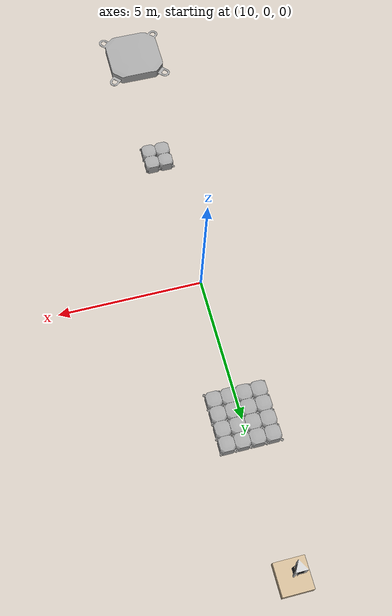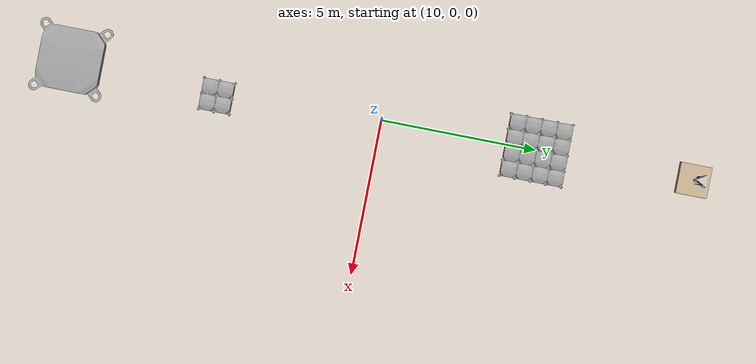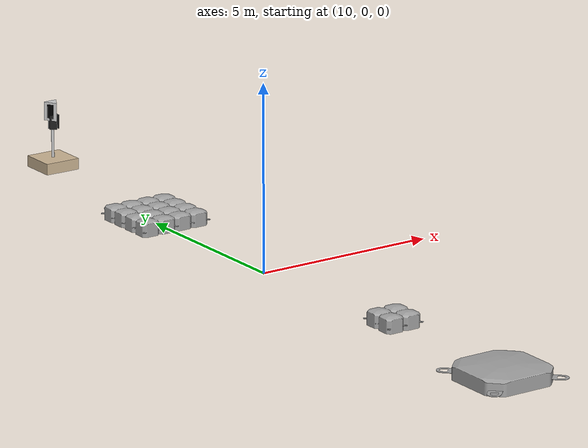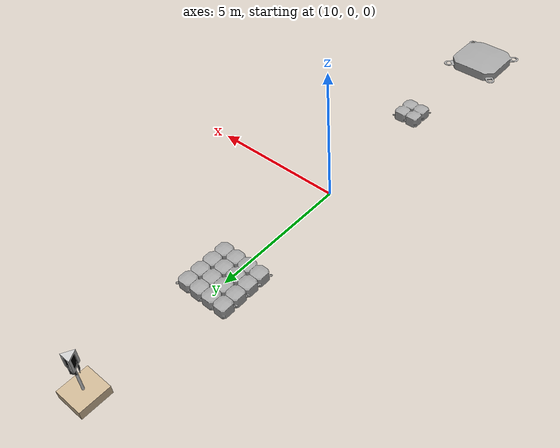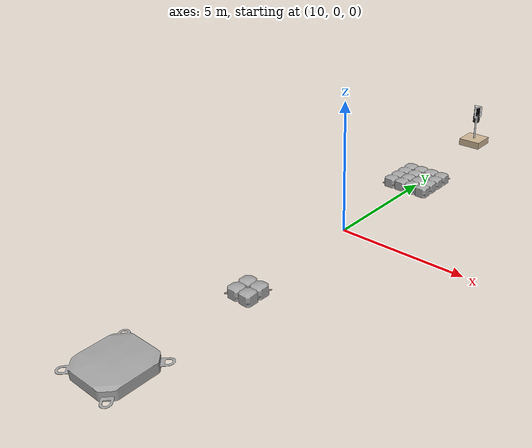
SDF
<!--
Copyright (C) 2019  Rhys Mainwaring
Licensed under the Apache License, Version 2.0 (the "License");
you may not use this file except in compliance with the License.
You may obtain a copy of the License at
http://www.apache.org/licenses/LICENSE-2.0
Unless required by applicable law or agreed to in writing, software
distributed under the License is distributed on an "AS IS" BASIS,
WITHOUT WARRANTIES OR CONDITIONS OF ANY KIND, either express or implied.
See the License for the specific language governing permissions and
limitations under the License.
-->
<sdf version="1.6">
 <world name="ocean_world">
  <scene>
   <sky>
    <time>10</time>
    <sunrise>6</sunrise>
    <sunset>18</sunset>
    <clouds><speed>12</speed><direction>1.57079</direction></clouds>
   </sky>
   <grid>false</grid>
   <origin_visual>false</origin_visual>
  </scene>
  <include><uri>model://sun</uri></include>
  <model name="dock_block">
   <pose>10 -10 0.25 0 0 0</pose>
   <include><uri>model://dock_block</uri></include>
  </model>
  <model name="dock_block_2x2">
   <pose>10 -5 0.25 0 0 0</pose>
   <include><uri>model://dock_block_2x2</uri></include>
  </model>
  <model name="dock_block_4x4">
   <pose>10 5 0.25 0 0 0</pose>
   <include><uri>model://dock_block_4x4</uri></include>
  </model>
  <include><uri>model://robotx_light_buoy</uri><pose>10 10 0.25 0 0 0</pose></include>
 </world>
</sdf>

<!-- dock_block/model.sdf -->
<sdf version="1.5">
  <model name="dock_block">
    <static>true</static>
    <pose>0 0 0.25 0 0 0</pose>
    <link name="link">
      <visual name="visual">
        <geometry>
          <mesh>
            <scale>4 4 1</scale>
            <uri>file://dock_block/mesh/dock_block.dae</uri>
          </mesh>
        </geometry>
      </visual>
    </link>
  </model>
</sdf>

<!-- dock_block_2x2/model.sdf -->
<sdf version="1.5">
  <model name="dock_block_2x2">
    <static>false</static>
    <link name="link">
      <velocity_decay>
        <linear>0.001</linear>
        <angular>0.001</angular>
      </velocity_decay>
      <inertial>
        <pose>0 0 -2 0 0 0</pose>
        <mass>40</mass>
        <inertia>
          <ixx>2.5137</ixx>
          <ixy>0</ixy>
          <ixz>0</ixz>
          <iyy>2.5137</iyy>
          <iyz>0</iyz>
          <izz>0.5386</izz>
        </inertia>
      </inertial>
      <collision name="collision">
        <pose>0 0 0 0 0 0</pose>
        <geometry>
          <box>
            <size>1 1 0.4</size>
          </box>
        </geometry>
      </collision>
      <visual name="visual">
        <pose> 0 0 0.2 0 0 0 </pose>
        <geometry>
          <mesh>
            <uri>file://dock_block_2x2/mesh/dock_block_2x2.dae</uri>
          </mesh>
        </geometry>
      </visual>
    </link>
    <plugin name="BuoyancyPlugin" filename="libbuoyancy_gazebo_plugin.so">
      <wave_model>ocean_waves</wave_model>
      <fluid_density>1000</fluid_density>
      <fluid_level>0</fluid_level>
      <linear_drag>1000.0</linear_drag>
      <angular_drag>200.0</angular_drag>
      <buoyancy name="buoyancy_base">
        <link_name>link</link_name>
      	<pose>0 0 -0.2 0 0 0</pose>
        <geometry>
          <box>
            <size>1 1 .4</size>
          </box>
        </geometry>
      </buoyancy>
    </plugin>
  </model>
</sdf>

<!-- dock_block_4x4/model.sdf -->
<sdf version="1.5">
  <model name="dock_block_4x4">
    <static>false</static>
    <link name="link">
      <velocity_decay>
        <linear>0.001</linear>
        <angular>0.001</angular>
      </velocity_decay>
       <inertial>
        <pose>0 0 0 0 0 0</pose>
        <mass>160</mass>
        <inertia>
          <ixx>55.467</ixx>
          <ixy>0</ixy>
          <ixz>0</ixz>
          <iyy>55.467</iyy>
          <iyz>0</iyz>
          <izz>106.67</izz>
        </inertia>
      </inertial>
      <collision name="collision">
        <pose>0 0 0 0 0 0</pose>
        <geometry>
          <box>
            <size>2 2 0.4</size>
          </box>
        </geometry>
      </collision>
      <visual name="visual">
        <pose>-0.25 0.25 0.2 0 0 0 </pose>
        <geometry>
          <mesh>
            <uri>file://dock_block_4x4/mesh/dock_block_4x4.dae</uri>
          </mesh>
        </geometry>
      </visual>
    </link>
    <plugin name="BuoyancyPlugin" filename="libbuoyancy_gazebo_plugin.so">
      <wave_model>ocean_waves</wave_model>
      <fluid_density>1000</fluid_density>
      <fluid_level>0</fluid_level>
      <linear_drag>1000.0</linear_drag>
      <angular_drag>200.0</angular_drag>
      <buoyancy name="buoyancy_base">
        <link_name>link</link_name>
      	<pose>0 0 0 0 0 0</pose>
        <geometry>
	  <sphere>
            <radius>0.72557</radius>
          </sphere>
	</geometry>
      </buoyancy>
    </plugin>
  </model>
</sdf>

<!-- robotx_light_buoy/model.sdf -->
<sdf version="1.6">
  <model name="robotx_light_buoy">
    <pose>0 0 -0.0762 0 0 0</pose>
    <link name="base_link">
      <velocity_decay>
        <linear>0.001</linear>
        <angular>0.001</angular>
      </velocity_decay>
      <inertial>
        <pose>0 0 -10 0 0 0</pose>
        <!-- 6.35 Kg. (dock block) x 9 (num blocks) + 10 Kg (estimated). -->
        <mass>67.15</mass>
        <inertia>
          <ixx>13.486</ixx>
          <ixy>0</ixy>
          <ixz>0</ixz>
          <iyy>13.486</iyy>
          <iyz>0</iyz>
          <izz>25.1813</izz>
        </inertia>
      </inertial>
      <visual name="base">
        <geometry>
           <mesh>
            <uri>file://robotx_light_buoy/mesh/robotx_light_buoy.dae</uri>
          </mesh>
        </geometry>
      </visual>
      <visual name="panel_1">
        <pose>-0.05 0.09 1.3 0 0 0.5</pose>
        <geometry>
          <box>
            <size>.192 .01 .386</size>
          </box>
        </geometry>
        <material>
          <script>
            <uri>file://media/materials/scripts/gazebo.material</uri>
            <name>Gazebo/Black</name>
          </script>
        </material>
        <plugin name="panel1plugin" filename="libgazebo_ros_color.so">
          <robotNamespace>light_buoy</robotNamespace>
          <topicName>panel1</topicName>
        </plugin>
      </visual>
      <visual name="panel_2">
        <pose>-0.06 -0.085 1.3 0 0 -0.54719</pose>
        <geometry>
          <box>
            <size>.192 .01 .386</size>
          </box>
        </geometry>
        <material>
          <script>
            <uri>file://media/materials/scripts/gazebo.material</uri>
            <name>Gazebo/Black</name>
          </script>
        </material>
        <plugin name="panel2plugin" filename="libgazebo_ros_color.so">
          <robotNamespace>light_buoy</robotNamespace>
          <topicName>panel2</topicName>
        </plugin>
      </visual>
      <visual name="panel_3">
        <pose>0.11 -0.003 1.3 0 0 1.5472</pose>
        <geometry>
          <box>
            <size>.192 .01 .386</size>
          </box>
        </geometry>
        <material>
          <script>
            <uri>file://media/materials/scripts/gazebo.material</uri>
            <name>Gazebo/Black</name>
          </script>
        </material>
        <plugin name="panel3plugin" filename="libgazebo_ros_color.so">
          <robotNamespace>light_buoy</robotNamespace>
          <topicName>panel3</topicName>
        </plugin>
      </visual>
      <collision name="collision_base">
        <pose>0 0 -0.2 0 0 0</pose>
        <geometry>
           <box>
            <size>1.5 1.5 0.4</size>
          </box>
        </geometry>
      </collision>
      <collision name="collision_body">
        <pose>0 0 0.85 0 0 0</pose>
        <geometry>
           <cylinder>
            <radius>0.4</radius>
            <length>1.75</length>
          </cylinder>
        </geometry>
      </collision>
    </link>
    <plugin name="BuoyancyPlugin" filename="libbuoyancy_gazebo_plugin.so">
      <fluid_density>1000</fluid_density>
      <fluid_level>0.0</fluid_level>
      <fluid_drag>5.0</fluid_drag>
      <link>
        <name>base_link</name>
        <center_of_volume>0 0 0.5</center_of_volume>
        <area>2.25</area>
        <height>0.70</height>
      </link>
    </plugin>
    <plugin name="controller" filename="liblight_buoy_controller.so">
      <robotNamespace>light_buoy</robotNamespace>
    </plugin>
  </model>
</sdf>
